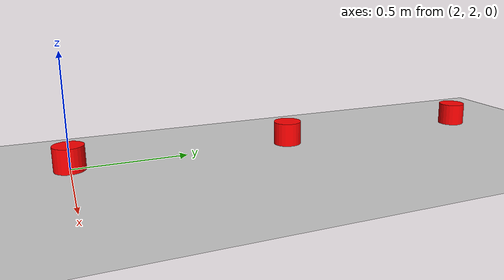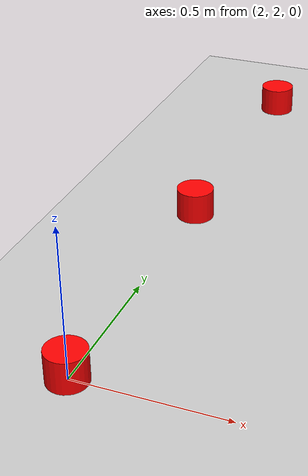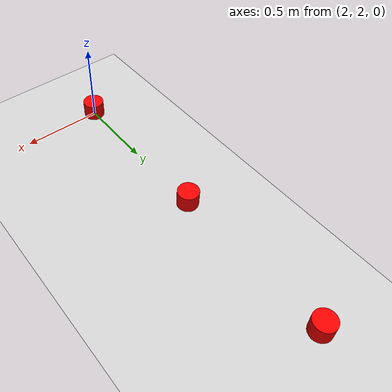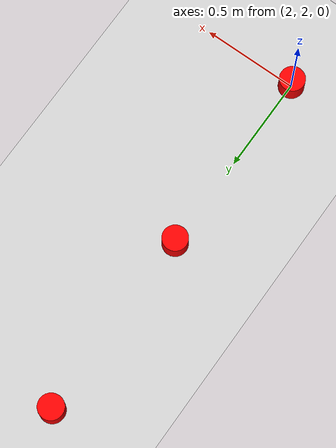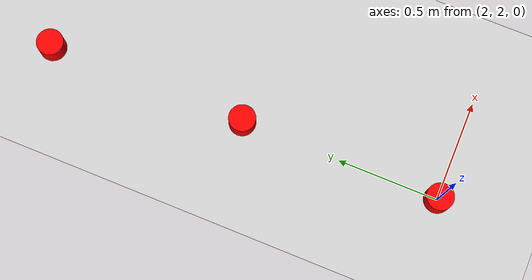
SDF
<sdf version="1.7">
 <world name="default">
  <model name="ground_plane">
   <static>1</static>
   <link name="link">
    <collision name="collision">
     <geometry><plane><normal>0 0 1</normal><size>100 100</size></plane></geometry>
     <surface>
      <contact><collide_bitmask>65535</collide_bitmask></contact>
      <friction><ode><mu>100</mu><mu2>50</mu2></ode></friction>
     </surface>
    </collision>
    <visual name="visual">
     <cast_shadows>0</cast_shadows>
     <geometry><plane><normal>0 0 1</normal><size>100 100</size></plane></geometry>
     <material>
      <script><uri>file://media/materials/scripts/gazebo.material</uri><name>Gazebo/Grey</name></script>
     </material>
    </visual>
   </link>
  </model>
  <model name="latinha_verm_clone_1">
   <link name="link">
    <inertial>
     <mass>1</mass>
     <inertia><ixx>0.145833</ixx><ixy>0</ixy><ixz>0</ixz><iyy>0.145833</iyy><iyz>0</iyz><izz>0.125</izz></inertia>
    </inertial>
    <visual name="visual">
     <geometry><cylinder><radius>0.066</radius><length>0.114</length></cylinder></geometry>
     <material>
      <script><name>Gazebo/Gray</name><uri>file://media/materials/scripts/gazebo.material</uri></script>
      <shader type="pixel"><normal_map>__default__</normal_map></shader>
      <ambient>1 0 0 1</ambient>
      <diffuse>1 0 0 1</diffuse>
      <specular>0.1 0.1 0.1 1</specular>
      <emissive>0 0 0 1</emissive>
     </material>
    </visual>
    <collision name="collision">
     <geometry><cylinder><radius>0.05</radius><length>0.1</length></cylinder></geometry>
     <surface>
      <friction>
       <ode><mu>1</mu><mu2>1</mu2><fdir1>0 0 0</fdir1><slip1>0</slip1><slip2>0</slip2></ode>
       <torsional>
        <coefficient>1</coefficient>
        <patch_radius>0</patch_radius>
        <surface_radius>0</surface_radius>
        <use_patch_radius>1</use_patch_radius>
        <ode><slip>0</slip></ode>
       </torsional>
      </friction>
      <bounce><restitution_coefficient>0</restitution_coefficient><threshold>1e+06</threshold></bounce>
      <contact>
       <collide_without_contact>0</collide_without_contact>
       <collide_without_contact_bitmask>1</collide_without_contact_bitmask>
       <collide_bitmask>1</collide_bitmask>
       <ode>
        <soft_cfm>0</soft_cfm>
        <soft_erp>0.2</soft_erp>
        <kp>1e+13</kp>
        <kd>1</kd>
        <max_vel>0.01</max_vel>
        <min_depth>0</min_depth>
       </ode>
       <bullet>
        <split_impulse>1</split_impulse>
        <split_impulse_penetration_threshold>-0.01</split_impulse_penetration_threshold>
        <soft_cfm>0</soft_cfm>
        <soft_erp>0.2</soft_erp>
        <kp>1e+13</kp>
        <kd>1</kd>
       </bullet>
      </contact>
     </surface>
    </collision>
   </link>
   <static>0</static>
   <pose>2 2 0.049995 0 -0 8.4e-05</pose>
  </model>
  <model name="latinha_verm_clone_2">
   <link name="link">
    <inertial>
     <mass>1</mass>
     <inertia><ixx>0.145833</ixx><ixy>0</ixy><ixz>0</ixz><iyy>0.145833</iyy><iyz>0</iyz><izz>0.125</izz></inertia>
    </inertial>
    <visual name="visual">
     <geometry><cylinder><radius>0.066</radius><length>0.114</length></cylinder></geometry>
     <material>
      <script><name>Gazebo/Gray</name><uri>file://media/materials/scripts/gazebo.material</uri></script>
      <shader type="pixel"><normal_map>__default__</normal_map></shader>
      <ambient>1 0 0 1</ambient>
      <diffuse>1 0 0 1</diffuse>
      <specular>0.1 0.1 0.1 1</specular>
      <emissive>0 0 0 1</emissive>
     </material>
    </visual>
    <collision name="collision">
     <geometry><cylinder><radius>0.05</radius><length>0.1</length></cylinder></geometry>
     <surface>
      <friction>
       <ode><mu>1</mu><mu2>1</mu2><fdir1>0 0 0</fdir1><slip1>0</slip1><slip2>0</slip2></ode>
       <torsional>
        <coefficient>1</coefficient>
        <patch_radius>0</patch_radius>
        <surface_radius>0</surface_radius>
        <use_patch_radius>1</use_patch_radius>
        <ode><slip>0</slip></ode>
       </torsional>
      </friction>
      <bounce><restitution_coefficient>0</restitution_coefficient><threshold>1e+06</threshold></bounce>
      <contact>
       <collide_without_contact>0</collide_without_contact>
       <collide_without_contact_bitmask>1</collide_without_contact_bitmask>
       <collide_bitmask>1</collide_bitmask>
       <ode>
        <soft_cfm>0</soft_cfm>
        <soft_erp>0.2</soft_erp>
        <kp>1e+13</kp>
        <kd>1</kd>
        <max_vel>0.01</max_vel>
        <min_depth>0</min_depth>
       </ode>
       <bullet>
        <split_impulse>1</split_impulse>
        <split_impulse_penetration_threshold>-0.01</split_impulse_penetration_threshold>
        <soft_cfm>0</soft_cfm>
        <soft_erp>0.2</soft_erp>
        <kp>1e+13</kp>
        <kd>1</kd>
       </bullet>
      </contact>
     </surface>
    </collision>
   </link>
   <static>0</static>
   <pose>2 3 0.05 0 -0 0.000163</pose>
  </model>
  <model name="latinha_verm_clone_3">
   <link name="link">
    <inertial>
     <mass>1</mass>
     <inertia><ixx>0.145833</ixx><ixy>0</ixy><ixz>0</ixz><iyy>0.145833</iyy><iyz>0</iyz><izz>0.125</izz></inertia>
    </inertial>
    <visual name="visual">
     <geometry><cylinder><radius>0.066</radius><length>0.114</length></cylinder></geometry>
     <material>
      <script><name>Gazebo/Gray</name><uri>file://media/materials/scripts/gazebo.material</uri></script>
      <shader type="pixel"><normal_map>__default__</normal_map></shader>
      <ambient>1 0 0 1</ambient>
      <diffuse>1 0 0 1</diffuse>
      <specular>0.1 0.1 0.1 1</specular>
      <emissive>0 0 0 1</emissive>
     </material>
    </visual>
    <collision name="collision">
     <geometry><cylinder><radius>0.05</radius><length>0.1</length></cylinder></geometry>
     <surface>
      <friction>
       <ode><mu>1</mu><mu2>1</mu2><fdir1>0 0 0</fdir1><slip1>0</slip1><slip2>0</slip2></ode>
       <torsional>
        <coefficient>1</coefficient>
        <patch_radius>0</patch_radius>
        <surface_radius>0</surface_radius>
        <use_patch_radius>1</use_patch_radius>
        <ode><slip>0</slip></ode>
       </torsional>
      </friction>
      <bounce><restitution_coefficient>0</restitution_coefficient><threshold>1e+06</threshold></bounce>
      <contact>
       <collide_without_contact>0</collide_without_contact>
       <collide_without_contact_bitmask>1</collide_without_contact_bitmask>
       <collide_bitmask>1</collide_bitmask>
       <ode>
        <soft_cfm>0</soft_cfm>
        <soft_erp>0.2</soft_erp>
        <kp>1e+13</kp>
        <kd>1</kd>
        <max_vel>0.01</max_vel>
        <min_depth>0</min_depth>
       </ode>
       <bullet>
        <split_impulse>1</split_impulse>
        <split_impulse_penetration_threshold>-0.01</split_impulse_penetration_threshold>
        <soft_cfm>0</soft_cfm>
        <soft_erp>0.2</soft_erp>
        <kp>1e+13</kp>
        <kd>1</kd>
       </bullet>
      </contact>
     </surface>
    </collision>
   </link>
   <static>0</static>
   <pose>2 4 0.049995 -2e-06 1e-06 0.000177</pose>
  </model>
 </world>
</sdf>
